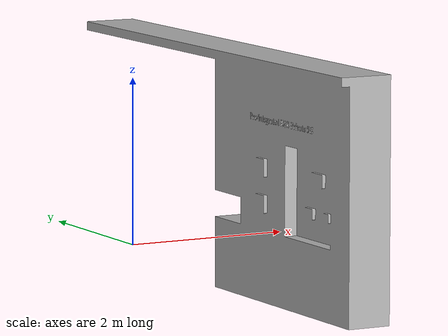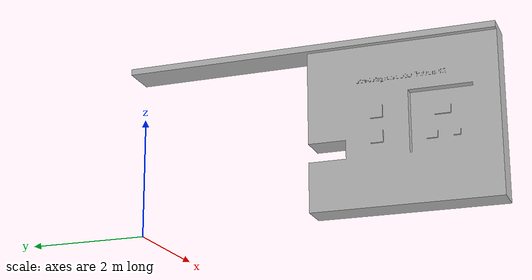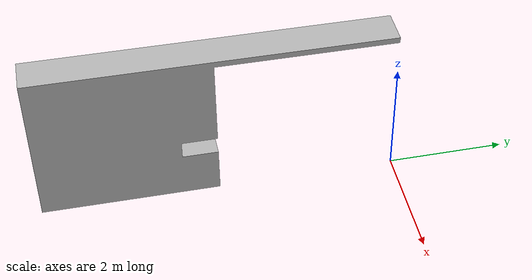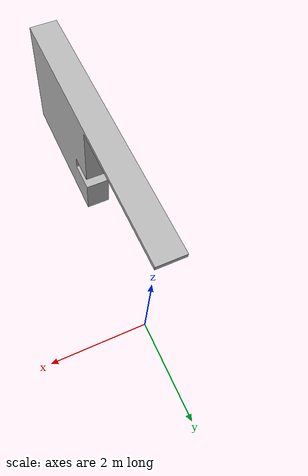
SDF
<?xml version='1.0'?>
<sdf version='1.6'>
	<model name='e2e'>
    	<pose>0 0 0 1.570796 0 -1.570796</pose>

		<static>true</static>

		<link name='link'>
			<visual name='visual'>
				<geometry>
					<mesh>
						<uri>model://e2e/E2E.STL</uri>
						<scale>0.001 0.001 0.001</scale>
					</mesh>
				</geometry>
			</visual>
			<collision name='collision'>
				<geometry>
					<mesh>
						<uri>model://e2e/E2E.STL</uri>
						<scale>0.001 0.001 0.001</scale>
					</mesh>
				</geometry>
			</collision>
		</link>
	</model>
</sdf>
